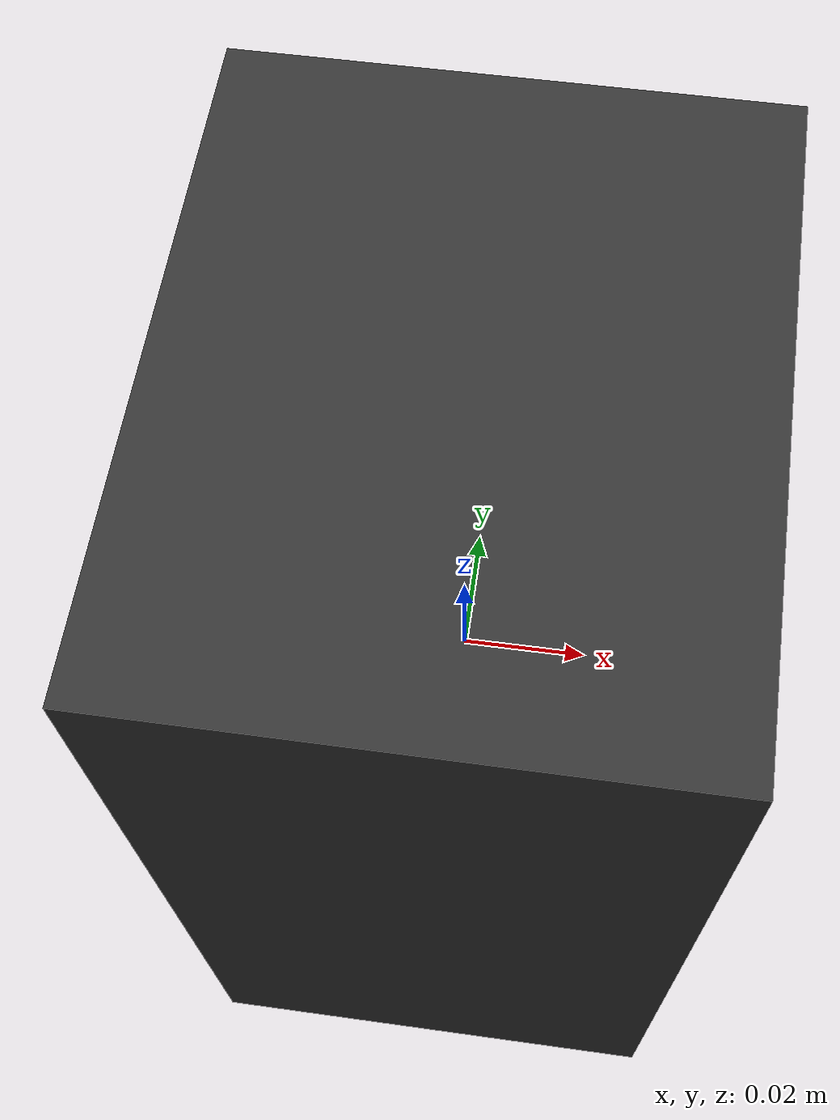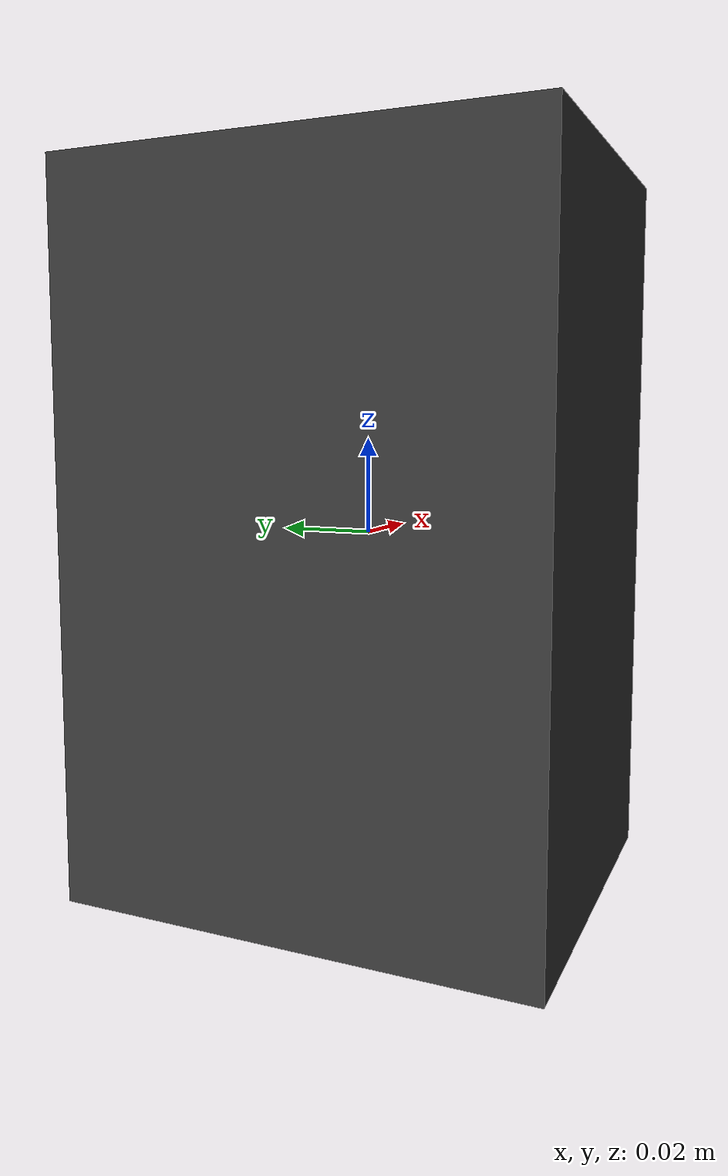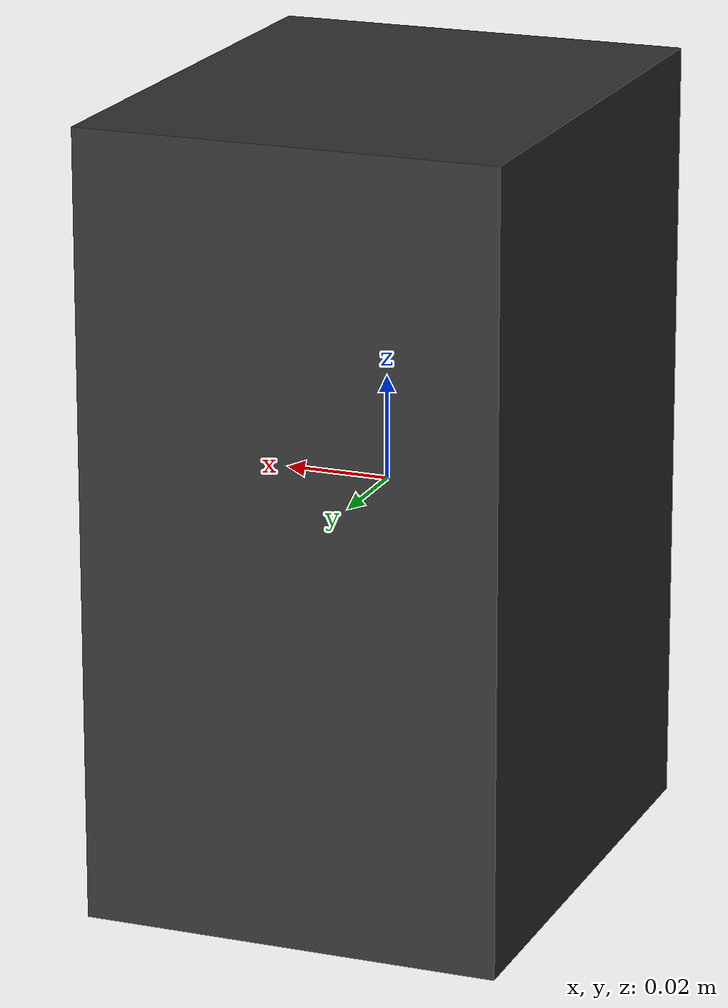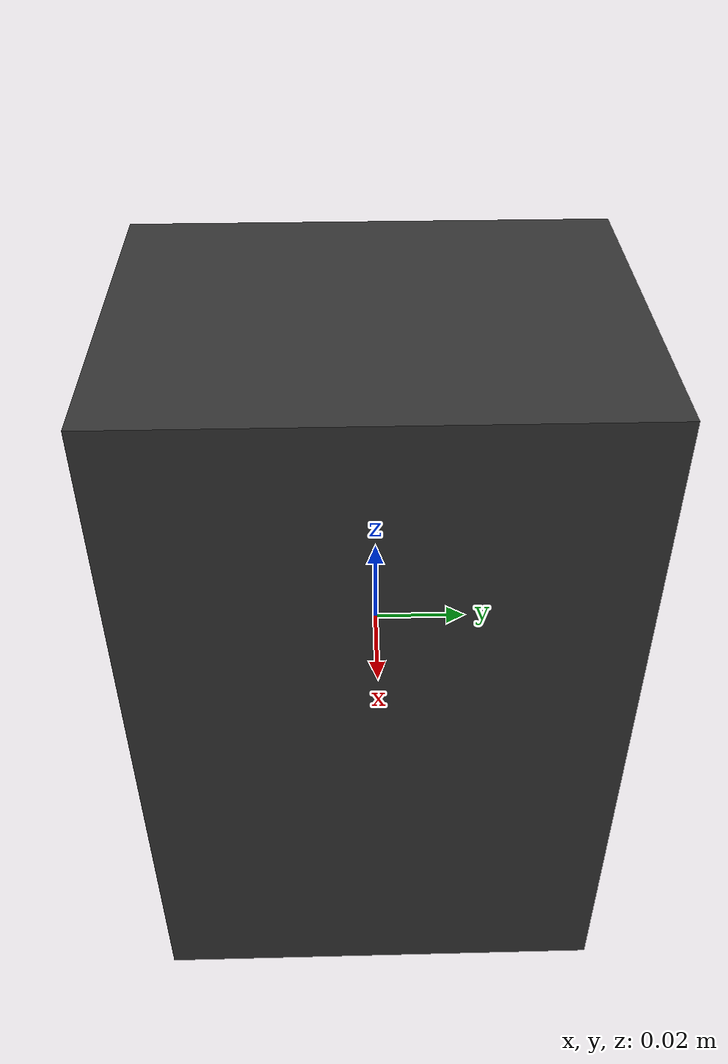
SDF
<?xml version='1.0'?>
<sdf version='1.7'>
  <model name='box_heavy'>
    <link name='box_01_body'>
      <pose>0 0 0 0 -0 0</pose>
      <inertial>
        <pose>0 0 0 0 0 0</pose>
        <inertia>
          <ixx>0.00812500</ixx>
          <ixy>0</ixy>
          <ixz>0</ixz>
          <iyy>0.00722500</iyy>
          <iyz>0</iyz>
          <izz>0.00410000</izz>
        </inertia>
        <mass>3.0</mass>
      </inertial>
      <gravity>1</gravity>
      <self_collide>0</self_collide>
      <kinematic>0</kinematic>
      <enable_wind>0</enable_wind>
      <visual name='box_01_geom_visual'>
        <pose>0 0 0 0 -0 0</pose>
        <geometry>
          <box>
            <size>0.08 0.1 0.15</size>
          </box>
        </geometry>
        <material>
          <ambient>0.2 0.2 0.2 1</ambient>
          <shader type='pixel'>
            <normal_map>__default__</normal_map>
          </shader>
          <script>
            <name>ModelPreview_1::box_01_body::box_01_geom_visual_MATERIAL_</name>
            <uri>__default__</uri>
          </script>
        </material>
        <cast_shadows>1</cast_shadows>
        <laser_retro>0</laser_retro>
        <transparency>0</transparency>
      </visual>
      <collision name='box_01_geom'>
        <laser_retro>0</laser_retro>
        <max_contacts>10</max_contacts>
        <pose>0 0 0 0 -0 0</pose>
        <geometry>
          <box>
            <size>0.08 0.1 0.15</size>
          </box>
        </geometry>
        <surface>
          <friction>
            <ode>
              <mu>0.4</mu>
              <mu2>0.4</mu2>
              <fdir1>0 0 0</fdir1>
              <slip1>0.005</slip1>
              <slip2>0.005</slip2>
            </ode>
            <torsional>
              <coefficient>1</coefficient>
              <patch_radius>0</patch_radius>
              <surface_radius>0</surface_radius>
              <use_patch_radius>1</use_patch_radius>
              <ode>
                <slip>0</slip>
              </ode>
            </torsional>
          </friction>
          <contact>
            <collide_without_contact>0</collide_without_contact>
            <collide_without_contact_bitmask>1</collide_without_contact_bitmask>
            <collide_bitmask>1</collide_bitmask>
            <ode>
              <soft_cfm>0</soft_cfm>
              <soft_erp>0.2</soft_erp>
              <kp>100000</kp>
              <kd>1</kd>
              <max_vel>100</max_vel>
              <min_depth>0.001</min_depth>
            </ode>
            <bullet>
              <split_impulse>1</split_impulse>
              <split_impulse_penetration_threshold>-0.01</split_impulse_penetration_threshold>
              <soft_cfm>0</soft_cfm>
              <soft_erp>0.2</soft_erp>
              <kp>100000</kp>
              <kd>1</kd>
            </bullet>
          </contact>
        </surface>
      </collision>
    </link>
    <static>0</static>
    <allow_auto_disable>0</allow_auto_disable>
  </model>
</sdf>
